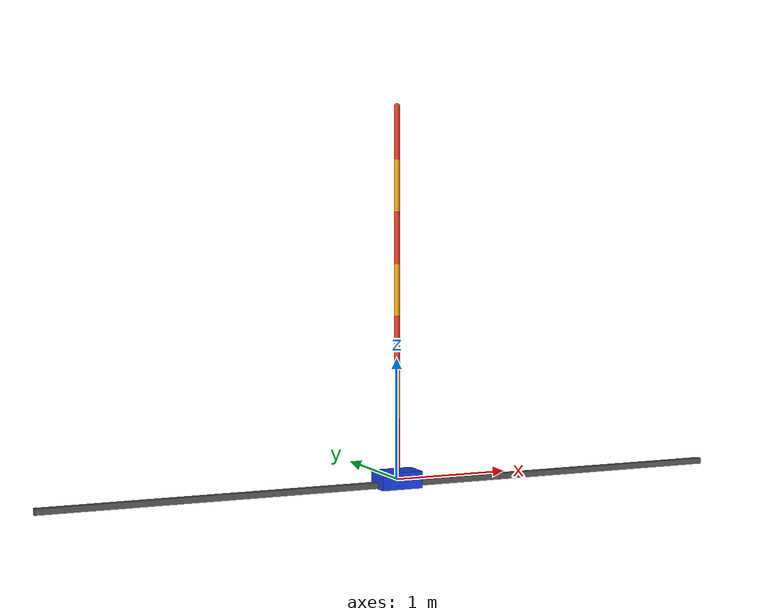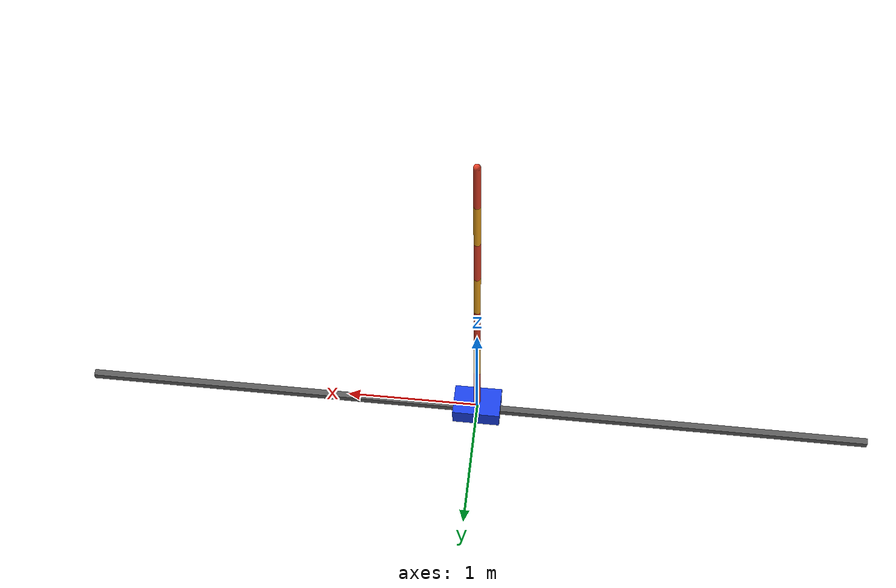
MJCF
<mujoco model="gradient_7_link_cartpole">
  <compiler angle="radian" coordinate="local" inertiafromgeom="true"/>
  <option timestep="0.005" gravity="0 0 -9.81" integrator="RK4" iterations="20"/>
  <visual>
    <global offwidth="1280" offheight="720"/>
  </visual>
  <default>
    <geom contype="0" conaffinity="0" friction="0 0 0"/>
    <joint armature="0.0005"/>
  </default>
  <worldbody>
    <light name="key" pos="0 -4 6" dir="0 1 -1" diffuse="0.9 0.9 0.9"/>
    <camera name="side" pos="0 -7 1.65" xyaxes="1 0 0 0 0 1"/>
    <geom name="rail" type="box" pos="0 0 -0.04" size="3 0.025 0.025" rgba="0.35 0.35 0.35 1"/>
    <body name="cart" pos="0 0 0">
      <joint name="slide" type="slide" axis="1 0 0" limited="true" range="-3 3" damping="0.02" frictionloss="0"/>
      <geom name="cart_geom" type="box" size="0.18 0.12 0.07" mass="1" rgba="0.1 0.25 0.9 1"/>
      <body name="link_1" pos="0 0 0.07">
        <joint name="hinge_1" type="hinge" axis="0 1 0" damping="0.00214285714" frictionloss="0"/>
        <geom name="link_1_geom" type="capsule" fromto="0 0 0 0 0 0.428571429" size="0.025" mass="0.142857143" rgba="0.9 0.25 0.15 1"/>
        <site name="tip_1" pos="0 0 0.428571429" size="0.012" rgba="0 0 0 1"/>
        <body name="link_2" pos="0 0 0.428571429">
          <joint name="hinge_2" type="hinge" axis="0 1 0" damping="0.00214285714" frictionloss="0"/>
          <geom name="link_2_geom" type="capsule" fromto="0 0 0 0 0 0.428571429" size="0.025" mass="0.142857143" rgba="0.95 0.65 0.10 1"/>
          <site name="tip_2" pos="0 0 0.428571429" size="0.012" rgba="0 0 0 1"/>
          <body name="link_3" pos="0 0 0.428571429">
            <joint name="hinge_3" type="hinge" axis="0 1 0" damping="0.00214285714" frictionloss="0"/>
            <geom name="link_3_geom" type="capsule" fromto="0 0 0 0 0 0.428571429" size="0.025" mass="0.142857143" rgba="0.9 0.25 0.15 1"/>
            <site name="tip_3" pos="0 0 0.428571429" size="0.012" rgba="0 0 0 1"/>
            <body name="link_4" pos="0 0 0.428571429">
              <joint name="hinge_4" type="hinge" axis="0 1 0" damping="0.00214285714" frictionloss="0"/>
              <geom name="link_4_geom" type="capsule" fromto="0 0 0 0 0 0.428571429" size="0.025" mass="0.142857143" rgba="0.95 0.65 0.10 1"/>
              <site name="tip_4" pos="0 0 0.428571429" size="0.012" rgba="0 0 0 1"/>
              <body name="link_5" pos="0 0 0.428571429">
                <joint name="hinge_5" type="hinge" axis="0 1 0" damping="0.00214285714" frictionloss="0"/>
                <geom name="link_5_geom" type="capsule" fromto="0 0 0 0 0 0.428571429" size="0.025" mass="0.142857143" rgba="0.9 0.25 0.15 1"/>
                <site name="tip_5" pos="0 0 0.428571429" size="0.012" rgba="0 0 0 1"/>
                <body name="link_6" pos="0 0 0.428571429">
                  <joint name="hinge_6" type="hinge" axis="0 1 0" damping="0.00214285714" frictionloss="0"/>
                  <geom name="link_6_geom" type="capsule" fromto="0 0 0 0 0 0.428571429" size="0.025" mass="0.142857143" rgba="0.95 0.65 0.10 1"/>
                  <site name="tip_6" pos="0 0 0.428571429" size="0.012" rgba="0 0 0 1"/>
                  <body name="link_7" pos="0 0 0.428571429">
                    <joint name="hinge_7" type="hinge" axis="0 1 0" damping="0.00214285714" frictionloss="0"/>
                    <geom name="link_7_geom" type="capsule" fromto="0 0 0 0 0 0.428571429" size="0.025" mass="0.142857143" rgba="0.9 0.25 0.15 1"/>
                    <site name="tip_7" pos="0 0 0.428571429" size="0.012" rgba="0 0 0 1"/>
                  </body>
                </body>
              </body>
            </body>
          </body>
        </body>
      </body>
    </body>
  </worldbody>
  <actuator>
    <motor name="cart_motor" joint="slide" gear="1" ctrllimited="true" ctrlrange="-80 80"/>
  </actuator>
</mujoco>
